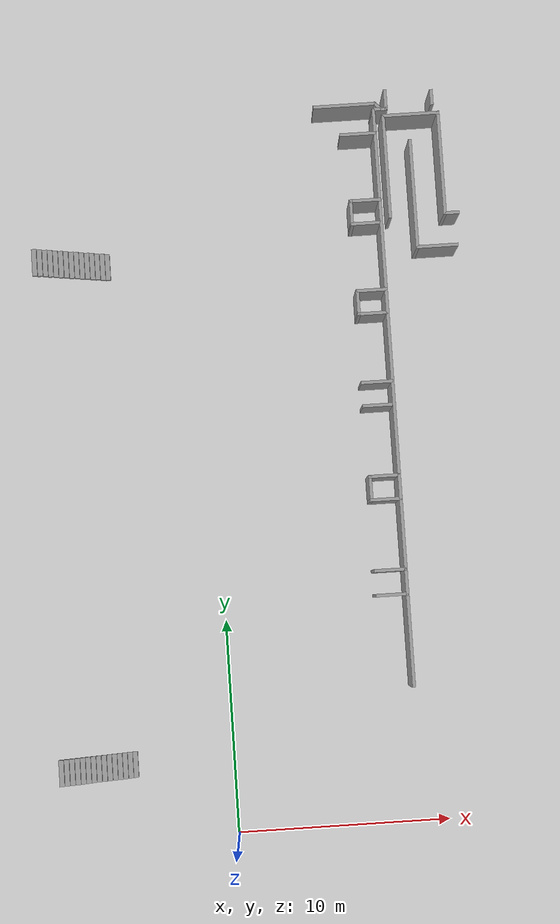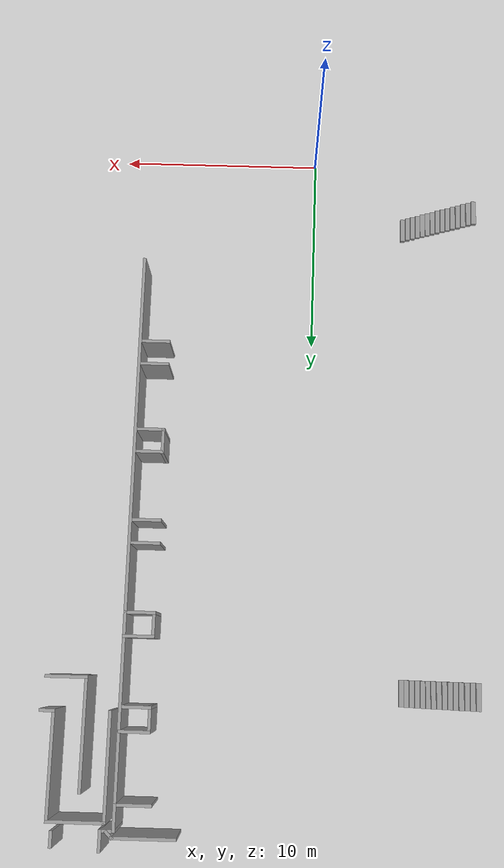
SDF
<sdf version="1.6">
 <world name="default">
  <model name="ground_plane">
   <static>1</static>
   <link name="link">
    <collision name="collision">
     <geometry><plane><normal>0 0 1</normal><size>100 100</size></plane></geometry>
     <surface>
      <contact><collide_bitmask>65535</collide_bitmask></contact>
      <friction><ode><mu>100</mu><mu2>50</mu2></ode></friction>
     </surface>
    </collision>
    <visual name="visual">
     <cast_shadows>0</cast_shadows>
     <geometry><plane><normal>0 0 1</normal><size>100 100</size></plane></geometry>
     <material>
      <script><uri>file://media/materials/scripts/gazebo.material</uri><name>Gazebo/Grey</name></script>
     </material>
    </visual>
   </link>
  </model>
  <model name="Tsudanuma_2-3-with_door">
   <pose>11.7222 12.8329 0 0 -0 0</pose>
   <link name="Stairs_1">
    <visual name="Stairs_1_Visual_0">
     <pose>-16.3838 14.5522 0.083333 0 -0 -1.5708</pose>
     <geometry><box><size>1.27604 0.233333 0.166667</size></box></geometry>
     <material>
      <script><uri>file://media/materials/scripts/gazebo.material</uri><name>Gazebo/Grey</name></script>
      <ambient>1 1 1 1</ambient>
     </material>
     <meta><layer>0</layer></meta>
    </visual>
    <collision name="Stairs_1_Collision_0">
     <geometry><box><size>1.27604 0.233333 0.166667</size></box></geometry>
     <pose>-16.3838 14.5522 0.083333 0 -0 -1.5708</pose>
    </collision>
    <visual name="Stairs_1_Visual_1">
     <pose>-16.6172 14.5522 0.25 0 -0 -1.5708</pose>
     <geometry><box><size>1.27604 0.233333 0.166667</size></box></geometry>
     <material>
      <script><uri>file://media/materials/scripts/gazebo.material</uri><name>Gazebo/Grey</name></script>
      <ambient>1 1 1 1</ambient>
     </material>
     <meta><layer>0</layer></meta>
    </visual>
    <collision name="Stairs_1_Collision_1">
     <geometry><box><size>1.27604 0.233333 0.166667</size></box></geometry>
     <pose>-16.6172 14.5522 0.25 0 -0 -1.5708</pose>
    </collision>
    <visual name="Stairs_1_Visual_2">
     <pose>-16.8505 14.5522 0.416667 0 -0 -1.5708</pose>
     <geometry><box><size>1.27604 0.233333 0.166667</size></box></geometry>
     <material>
      <script><uri>file://media/materials/scripts/gazebo.material</uri><name>Gazebo/Grey</name></script>
      <ambient>1 1 1 1</ambient>
     </material>
     <meta><layer>0</layer></meta>
    </visual>
    <collision name="Stairs_1_Collision_2">
     <geometry><box><size>1.27604 0.233333 0.166667</size></box></geometry>
     <pose>-16.8505 14.5522 0.416667 0 -0 -1.5708</pose>
    </collision>
    <visual name="Stairs_1_Visual_3">
     <pose>-17.0838 14.5522 0.583333 0 -0 -1.5708</pose>
     <geometry><box><size>1.27604 0.233333 0.166667</size></box></geometry>
     <material>
      <script><uri>file://media/materials/scripts/gazebo.material</uri><name>Gazebo/Grey</name></script>
      <ambient>1 1 1 1</ambient>
     </material>
     <meta><layer>0</layer></meta>
    </visual>
    <collision name="Stairs_1_Collision_3">
     <geometry><box><size>1.27604 0.233333 0.166667</size></box></geometry>
     <pose>-17.0838 14.5522 0.583333 0 -0 -1.5708</pose>
    </collision>
    <visual name="Stairs_1_Visual_4">
     <pose>-17.3172 14.5522 0.75 0 -0 -1.5708</pose>
     <geometry><box><size>1.27604 0.233333 0.166667</size></box></geometry>
     <material>
      <script><uri>file://media/materials/scripts/gazebo.material</uri><name>Gazebo/Grey</name></script>
      <ambient>1 1 1 1</ambient>
     </material>
     <meta><layer>0</layer></meta>
    </visual>
    <collision name="Stairs_1_Collision_4">
     <geometry><box><size>1.27604 0.233333 0.166667</size></box></geometry>
     <pose>-17.3172 14.5522 0.75 0 -0 -1.5708</pose>
    </collision>
    <visual name="Stairs_1_Visual_5">
     <pose>-17.5505 14.5522 0.916667 0 -0 -1.5708</pose>
     <geometry><box><size>1.27604 0.233333 0.166667</size></box></geometry>
     <material>
      <script><uri>file://media/materials/scripts/gazebo.material</uri><name>Gazebo/Grey</name></script>
      <ambient>1 1 1 1</ambient>
     </material>
     <meta><layer>0</layer></meta>
    </visual>
    <collision name="Stairs_1_Collision_5">
     <geometry><box><size>1.27604 0.233333 0.166667</size></box></geometry>
     <pose>-17.5505 14.5522 0.916667 0 -0 -1.5708</pose>
    </collision>
    <visual name="Stairs_1_Visual_6">
     <pose>-17.7838 14.5522 1.08333 0 -0 -1.5708</pose>
     <geometry><box><size>1.27604 0.233333 0.166667</size></box></geometry>
     <material>
      <script><uri>file://media/materials/scripts/gazebo.material</uri><name>Gazebo/Grey</name></script>
      <ambient>1 1 1 1</ambient>
     </material>
     <meta><layer>0</layer></meta>
    </visual>
    <collision name="Stairs_1_Collision_6">
     <geometry><box><size>1.27604 0.233333 0.166667</size></box></geometry>
     <pose>-17.7838 14.5522 1.08333 0 -0 -1.5708</pose>
    </collision>
    <visual name="Stairs_1_Visual_7">
     <pose>-18.0172 14.5522 1.25 0 -0 -1.5708</pose>
     <geometry><box><size>1.27604 0.233333 0.166667</size></box></geometry>
     <material>
      <script><uri>file://media/materials/scripts/gazebo.material</uri><name>Gazebo/Grey</name></script>
      <ambient>1 1 1 1</ambient>
     </material>
     <meta><layer>0</layer></meta>
    </visual>
    <collision name="Stairs_1_Collision_7">
     <geometry><box><size>1.27604 0.233333 0.166667</size></box></geometry>
     <pose>-18.0172 14.5522 1.25 0 -0 -1.5708</pose>
    </collision>
    <visual name="Stairs_1_Visual_8">
     <pose>-18.2505 14.5522 1.41667 0 -0 -1.5708</pose>
     <geometry><box><size>1.27604 0.233333 0.166667</size></box></geometry>
     <material>
      <script><uri>file://media/materials/scripts/gazebo.material</uri><name>Gazebo/Grey</name></script>
      <ambient>1 1 1 1</ambient>
     </material>
     <meta><layer>0</layer></meta>
    </visual>
    <collision name="Stairs_1_Collision_8">
     <geometry><box><size>1.27604 0.233333 0.166667</size></box></geometry>
     <pose>-18.2505 14.5522 1.41667 0 -0 -1.5708</pose>
    </collision>
    <visual name="Stairs_1_Visual_9">
     <pose>-18.4838 14.5522 1.58333 0 -0 -1.5708</pose>
     <geometry><box><size>1.27604 0.233333 0.166667</size></box></geometry>
     <material>
      <script><uri>file://media/materials/scripts/gazebo.material</uri><name>Gazebo/Grey</name></script>
      <ambient>1 1 1 1</ambient>
     </material>
     <meta><layer>0</layer></meta>
    </visual>
    <collision name="Stairs_1_Collision_9">
     <geometry><box><size>1.27604 0.233333 0.166667</size></box></geometry>
     <pose>-18.4838 14.5522 1.58333 0 -0 -1.5708</pose>
    </collision>
    <visual name="Stairs_1_Visual_10">
     <pose>-18.7172 14.5522 1.75 0 -0 -1.5708</pose>
     <geometry><box><size>1.27604 0.233333 0.166667</size></box></geometry>
     <material>
      <script><uri>file://media/materials/scripts/gazebo.material</uri><name>Gazebo/Grey</name></script>
      <ambient>1 1 1 1</ambient>
     </material>
     <meta><layer>0</layer></meta>
    </visual>
    <collision name="Stairs_1_Collision_10">
     <geometry><box><size>1.27604 0.233333 0.166667</size></box></geometry>
     <pose>-18.7172 14.5522 1.75 0 -0 -1.5708</pose>
    </collision>
    <visual name="Stairs_1_Visual_11">
     <pose>-18.9505 14.5522 1.91667 0 -0 -1.5708</pose>
     <geometry><box><size>1.27604 0.233333 0.166667</size></box></geometry>
     <material>
      <script><uri>file://media/materials/scripts/gazebo.material</uri><name>Gazebo/Grey</name></script>
      <ambient>1 1 1 1</ambient>
     </material>
     <meta><layer>0</layer></meta>
    </visual>
    <collision name="Stairs_1_Collision_11">
     <geometry><box><size>1.27604 0.233333 0.166667</size></box></geometry>
     <pose>-18.9505 14.5522 1.91667 0 -0 -1.5708</pose>
    </collision>
    <visual name="Stairs_1_Visual_12">
     <pose>-19.1838 14.5522 2.08333 0 -0 -1.5708</pose>
     <geometry><box><size>1.27604 0.233333 0.166667</size></box></geometry>
     <material>
      <script><uri>file://media/materials/scripts/gazebo.material</uri><name>Gazebo/Grey</name></script>
      <ambient>1 1 1 1</ambient>
     </material>
     <meta><layer>0</layer></meta>
    </visual>
    <collision name="Stairs_1_Collision_12">
     <geometry><box><size>1.27604 0.233333 0.166667</size></box></geometry>
     <pose>-19.1838 14.5522 2.08333 0 -0 -1.5708</pose>
    </collision>
    <visual name="Stairs_1_Visual_13">
     <pose>-19.4172 14.5522 2.25 0 -0 -1.5708</pose>
     <geometry><box><size>1.27604 0.233333 0.166667</size></box></geometry>
     <material>
      <script><uri>file://media/materials/scripts/gazebo.material</uri><name>Gazebo/Grey</name></script>
      <ambient>1 1 1 1</ambient>
     </material>
     <meta><layer>0</layer></meta>
    </visual>
    <collision name="Stairs_1_Collision_13">
     <geometry><box><size>1.27604 0.233333 0.166667</size></box></geometry>
     <pose>-19.4172 14.5522 2.25 0 -0 -1.5708</pose>
    </collision>
    <visual name="Stairs_1_Visual_14">
     <pose>-19.6505 14.5522 2.41667 0 -0 -1.5708</pose>
     <geometry><box><size>1.27604 0.233333 0.166667</size></box></geometry>
     <material>
      <script><uri>file://media/materials/scripts/gazebo.material</uri><name>Gazebo/Grey</name></script>
      <ambient>1 1 1 1</ambient>
     </material>
     <meta><layer>0</layer></meta>
    </visual>
    <collision name="Stairs_1_Collision_14">
     <geometry><box><size>1.27604 0.233333 0.166667</size></box></geometry>
     <pose>-19.6505 14.5522 2.41667 0 -0 -1.5708</pose>
    </collision>
   </link>
   <link name="Stairs_2">
    <visual name="Stairs_2_Visual_0">
     <pose>-16.4233 -9.33498 0.083333 0 -0 -1.5708</pose>
     <geometry><box><size>1.21689 0.233333 0.166667</size></box></geometry>
     <material>
      <script><uri>file://media/materials/scripts/gazebo.material</uri><name>Gazebo/Grey</name></script>
      <ambient>1 1 1 1</ambient>
     </material>
     <meta><layer>0</layer></meta>
    </visual>
    <collision name="Stairs_2_Collision_0">
     <geometry><box><size>1.21689 0.233333 0.166667</size></box></geometry>
     <pose>-16.4233 -9.33498 0.083333 0 -0 -1.5708</pose>
    </collision>
    <visual name="Stairs_2_Visual_1">
     <pose>-16.6566 -9.33498 0.25 0 -0 -1.5708</pose>
     <geometry><box><size>1.21689 0.233333 0.166667</size></box></geometry>
     <material>
      <script><uri>file://media/materials/scripts/gazebo.material</uri><name>Gazebo/Grey</name></script>
      <ambient>1 1 1 1</ambient>
     </material>
     <meta><layer>0</layer></meta>
    </visual>
    <collision name="Stairs_2_Collision_1">
     <geometry><box><size>1.21689 0.233333 0.166667</size></box></geometry>
     <pose>-16.6566 -9.33498 0.25 0 -0 -1.5708</pose>
    </collision>
    <visual name="Stairs_2_Visual_2">
     <pose>-16.8899 -9.33498 0.416667 0 -0 -1.5708</pose>
     <geometry><box><size>1.21689 0.233333 0.166667</size></box></geometry>
     <material>
      <script><uri>file://media/materials/scripts/gazebo.material</uri><name>Gazebo/Grey</name></script>
      <ambient>1 1 1 1</ambient>
     </material>
     <meta><layer>0</layer></meta>
    </visual>
    <collision name="Stairs_2_Collision_2">
     <geometry><box><size>1.21689 0.233333 0.166667</size></box></geometry>
     <pose>-16.8899 -9.33498 0.416667 0 -0 -1.5708</pose>
    </collision>
    <visual name="Stairs_2_Visual_3">
     <pose>-17.1233 -9.33498 0.583333 0 -0 -1.5708</pose>
     <geometry><box><size>1.21689 0.233333 0.166667</size></box></geometry>
     <material>
      <script><uri>file://media/materials/scripts/gazebo.material</uri><name>Gazebo/Grey</name></script>
      <ambient>1 1 1 1</ambient>
     </material>
     <meta><layer>0</layer></meta>
    </visual>
    <collision name="Stairs_2_Collision_3">
     <geometry><box><size>1.21689 0.233333 0.166667</size></box></geometry>
     <pose>-17.1233 -9.33498 0.583333 0 -0 -1.5708</pose>
    </collision>
    <visual name="Stairs_2_Visual_4">
     <pose>-17.3566 -9.33498 0.75 0 -0 -1.5708</pose>
     <geometry><box><size>1.21689 0.233333 0.166667</size></box></geometry>
     <material>
      <script><uri>file://media/materials/scripts/gazebo.material</uri><name>Gazebo/Grey</name></script>
      <ambient>1 1 1 1</ambient>
     </material>
     <meta><layer>0</layer></meta>
    </visual>
    <collision name="Stairs_2_Collision_4">
     <geometry><box><size>1.21689 0.233333 0.166667</size></box></geometry>
     <pose>-17.3566 -9.33498 0.75 0 -0 -1.5708</pose>
    </collision>
    <visual name="Stairs_2_Visual_5">
     <pose>-17.5899 -9.33498 0.916667 0 -0 -1.5708</pose>
     <geometry><box><size>1.21689 0.233333 0.166667</size></box></geometry>
     <material>
      <script><uri>file://media/materials/scripts/gazebo.material</uri><name>Gazebo/Grey</name></script>
      <ambient>1 1 1 1</ambient>
     </material>
     <meta><layer>0</layer></meta>
    </visual>
    <collision name="Stairs_2_Collision_5">
     <geometry><box><size>1.21689 0.233333 0.166667</size></box></geometry>
     <pose>-17.5899 -9.33498 0.916667 0 -0 -1.5708</pose>
    </collision>
    <visual name="Stairs_2_Visual_6">
     <pose>-17.8233 -9.33498 1.08333 0 -0 -1.5708</pose>
     <geometry><box><size>1.21689 0.233333 0.166667</size></box></geometry>
     <material>
      <script><uri>file://media/materials/scripts/gazebo.material</uri><name>Gazebo/Grey</name></script>
      <ambient>1 1 1 1</ambient>
     </material>
     <meta><layer>0</layer></meta>
    </visual>
    <collision name="Stairs_2_Collision_6">
     <geometry><box><size>1.21689 0.233333 0.166667</size></box></geometry>
     <pose>-17.8233 -9.33498 1.08333 0 -0 -1.5708</pose>
    </collision>
    <visual name="Stairs_2_Visual_7">
     <pose>-18.0566 -9.33498 1.25 0 -0 -1.5708</pose>
     <geometry><box><size>1.21689 0.233333 0.166667</size></box></geometry>
     <material>
      <script><uri>file://media/materials/scripts/gazebo.material</uri><name>Gazebo/Grey</name></script>
      <ambient>1 1 1 1</ambient>
     </material>
     <meta><layer>0</layer></meta>
    </visual>
    <collision name="Stairs_2_Collision_7">
     <geometry><box><size>1.21689 0.233333 0.166667</size></box></geometry>
     <pose>-18.0566 -9.33498 1.25 0 -0 -1.5708</pose>
    </collision>
    <visual name="Stairs_2_Visual_8">
     <pose>-18.2899 -9.33498 1.41667 0 -0 -1.5708</pose>
     <geometry><box><size>1.21689 0.233333 0.166667</size></box></geometry>
     <material>
      <script><uri>file://media/materials/scripts/gazebo.material</uri><name>Gazebo/Grey</name></script>
      <ambient>1 1 1 1</ambient>
     </material>
     <meta><layer>0</layer></meta>
    </visual>
    <collision name="Stairs_2_Collision_8">
     <geometry><box><size>1.21689 0.233333 0.166667</size></box></geometry>
     <pose>-18.2899 -9.33498 1.41667 0 -0 -1.5708</pose>
    </collision>
    <visual name="Stairs_2_Visual_9">
     <pose>-18.5233 -9.33498 1.58333 0 -0 -1.5708</pose>
     <geometry><box><size>1.21689 0.233333 0.166667</size></box></geometry>
     <material>
      <script><uri>file://media/materials/scripts/gazebo.material</uri><name>Gazebo/Grey</name></script>
      <ambient>1 1 1 1</ambient>
     </material>
     <meta><layer>0</layer></meta>
    </visual>
    <collision name="Stairs_2_Collision_9">
     <geometry><box><size>1.21689 0.233333 0.166667</size></box></geometry>
     <pose>-18.5233 -9.33498 1.58333 0 -0 -1.5708</pose>
    </collision>
    <visual name="Stairs_2_Visual_10">
     <pose>-18.7566 -9.33498 1.75 0 -0 -1.5708</pose>
     <geometry><box><size>1.21689 0.233333 0.166667</size></box></geometry>
     <material>
      <script><uri>file://media/materials/scripts/gazebo.material</uri><name>Gazebo/Grey</name></script>
      <ambient>1 1 1 1</ambient>
     </material>
     <meta><layer>0</layer></meta>
    </visual>
    <collision name="Stairs_2_Collision_10">
     <geometry><box><size>1.21689 0.233333 0.166667</size></box></geometry>
     <pose>-18.7566 -9.33498 1.75 0 -0 -1.5708</pose>
    </collision>
    <visual name="Stairs_2_Visual_11">
     <pose>-18.9899 -9.33498 1.91667 0 -0 -1.5708</pose>
     <geometry><box><size>1.21689 0.233333 0.166667</size></box></geometry>
     <material>
      <script><uri>file://media/materials/scripts/gazebo.material</uri><name>Gazebo/Grey</name></script>
      <ambient>1 1 1 1</ambient>
     </material>
     <meta><layer>0</layer></meta>
    </visual>
    <collision name="Stairs_2_Collision_11">
     <geometry><box><size>1.21689 0.233333 0.166667</size></box></geometry>
     <pose>-18.9899 -9.33498 1.91667 0 -0 -1.5708</pose>
    </collision>
    <visual name="Stairs_2_Visual_12">
     <pose>-19.2233 -9.33498 2.08333 0 -0 -1.5708</pose>
     <geometry><box><size>1.21689 0.233333 0.166667</size></box></geometry>
     <material>
      <script><uri>file://media/materials/scripts/gazebo.material</uri><name>Gazebo/Grey</name></script>
      <ambient>1 1 1 1</ambient>
     </material>
     <meta><layer>0</layer></meta>
    </visual>
    <collision name="Stairs_2_Collision_12">
     <geometry><box><size>1.21689 0.233333 0.166667</size></box></geometry>
     <pose>-19.2233 -9.33498 2.08333 0 -0 -1.5708</pose>
    </collision>
    <visual name="Stairs_2_Visual_13">
     <pose>-19.4566 -9.33498 2.25 0 -0 -1.5708</pose>
     <geometry><box><size>1.21689 0.233333 0.166667</size></box></geometry>
     <material>
      <script><uri>file://media/materials/scripts/gazebo.material</uri><name>Gazebo/Grey</name></script>
      <ambient>1 1 1 1</ambient>
     </material>
     <meta><layer>0</layer></meta>
    </visual>
    <collision name="Stairs_2_Collision_13">
     <geometry><box><size>1.21689 0.233333 0.166667</size></box></geometry>
     <pose>-19.4566 -9.33498 2.25 0 -0 -1.5708</pose>
    </collision>
    <visual name="Stairs_2_Visual_14">
     <pose>-19.6899 -9.33498 2.41667 0 -0 -1.5708</pose>
     <geometry><box><size>1.21689 0.233333 0.166667</size></box></geometry>
     <material>
      <script><uri>file://media/materials/scripts/gazebo.material</uri><name>Gazebo/Grey</name></script>
      <ambient>1 1 1 1</ambient>
     </material>
     <meta><layer>0</layer></meta>
    </visual>
    <collision name="Stairs_2_Collision_14">
     <geometry><box><size>1.21689 0.233333 0.166667</size></box></geometry>
     <pose>-19.6899 -9.33498 2.41667 0 -0 -1.5708</pose>
    </collision>
   </link>
   <link name="Wall_328">
    <collision name="Wall_328_Collision">
     <geometry><box><size>0.75 0.15 2.5</size></box></geometry>
     <pose>0 0 1.25 0 -0 0</pose>
    </collision>
    <visual name="Wall_328_Visual">
     <pose>0 0 1.25 0 -0 0</pose>
     <geometry><box><size>0.75 0.15 2.5</size></box></geometry>
     <material>
      <script><uri>file://media/materials/scripts/gazebo.material</uri><name>Gazebo/Grey</name></script>
      <ambient>1 1 1 1</ambient>
     </material>
     <meta><layer>0</layer></meta>
    </visual>
    <pose>-0.394673 21.2823 0 0 -0 -1.5708</pose>
   </link>
   <link name="Wall_331">
    <collision name="Wall_331_Collision">
     <geometry><box><size>5.25 0.15 2.5</size></box></geometry>
     <pose>0 0 1.25 0 -0 0</pose>
    </collision>
    <visual name="Wall_331_Visual">
     <pose>0 0 1.25 0 -0 0</pose>
     <geometry><box><size>5.25 0.15 2.5</size></box></geometry>
     <material>
      <script><uri>file://media/materials/scripts/gazebo.material</uri><name>Gazebo/Grey</name></script>
      <ambient>1 1 1 1</ambient>
     </material>
     <meta><layer>0</layer></meta>
    </visual>
    <pose>-1.56113 16.6869 0 0 -0 -1.5708</pose>
   </link>
   <link name="Wall_332">
    <collision name="Wall_332_Collision">
     <geometry><box><size>2 0.15 2.5</size></box></geometry>
     <pose>0 0 1.25 0 -0 0</pose>
    </collision>
    <visual name="Wall_332_Visual">
     <pose>0 0 1.25 0 -0 0</pose>
     <geometry><box><size>2 0.15 2.5</size></box></geometry>
     <material>
      <script><uri>file://media/materials/scripts/gazebo.material</uri><name>Gazebo/Grey</name></script>
      <ambient>1 1 1 1</ambient>
     </material>
     <meta><layer>0</layer></meta>
    </visual>
    <pose>-0.636127 14.1369 0 0 -0 0</pose>
   </link>
   <link name="Wall_334">
    <collision name="Wall_334_Collision">
     <geometry><box><size>5 0.15 2.5</size></box></geometry>
     <pose>0 0 1.25 0 -0 0</pose>
    </collision>
    <visual name="Wall_334_Visual">
     <pose>0 0 1.25 0 -0 0</pose>
     <geometry><box><size>5 0.15 2.5</size></box></geometry>
     <material>
      <script><uri>file://media/materials/scripts/gazebo.material</uri><name>Gazebo/Grey</name></script>
      <ambient>1 1 1 1</ambient>
     </material>
     <meta><layer>0</layer></meta>
    </visual>
    <pose>-2.74883 18.0988 0 0 -0 1.5708</pose>
   </link>
   <link name="Wall_335">
    <collision name="Wall_335_Collision">
     <geometry><box><size>2.75 0.15 2.5</size></box></geometry>
     <pose>0 0 1.25 0 -0 0</pose>
    </collision>
    <visual name="Wall_335_Visual">
     <pose>0 0 1.25 0 -0 0</pose>
     <geometry><box><size>2.75 0.15 2.5</size></box></geometry>
     <material>
      <script><uri>file://media/materials/scripts/gazebo.material</uri><name>Gazebo/Grey</name></script>
      <ambient>1 1 1 1</ambient>
     </material>
     <meta><layer>0</layer></meta>
    </visual>
    <pose>-1.44883 20.5238 0 0 -0 0</pose>
   </link>
   <link name="Wall_336">
    <collision name="Wall_336_Collision">
     <geometry><box><size>5 0.15 2.5</size></box></geometry>
     <pose>0 0 1.25 0 -0 0</pose>
    </collision>
    <visual name="Wall_336_Visual">
     <pose>0 0 1.25 0 -0 0</pose>
     <geometry><box><size>5 0.15 2.5</size></box></geometry>
     <material>
      <script><uri>file://media/materials/scripts/gazebo.material</uri><name>Gazebo/Grey</name></script>
      <ambient>1 1 1 1</ambient>
     </material>
     <meta><layer>0</layer></meta>
    </visual>
    <pose>-0.148833 18.0988 0 0 -0 -1.5708</pose>
   </link>
   <link name="Wall_337">
    <collision name="Wall_337_Collision">
     <geometry><box><size>0.75 0.15 2.5</size></box></geometry>
     <pose>0 0 1.25 0 -0 0</pose>
    </collision>
    <visual name="Wall_337_Visual">
     <pose>0 0 1.25 0 -0 0</pose>
     <geometry><box><size>0.75 0.15 2.5</size></box></geometry>
     <material>
      <script><uri>file://media/materials/scripts/gazebo.material</uri><name>Gazebo/Grey</name></script>
      <ambient>1 1 1 1</ambient>
     </material>
     <meta><layer>0</layer></meta>
    </visual>
    <pose>0.151167 15.6738 0 0 -0 0</pose>
   </link>
   <link name="Wall_430">
    <collision name="Wall_430_Collision">
     <geometry><box><size>1.5 0.15 2.5</size></box></geometry>
     <pose>0 0 1.25 0 -0 0</pose>
    </collision>
    <visual name="Wall_430_Visual">
     <pose>0 0 1.25 0 -0 0</pose>
     <geometry><box><size>1.5 0.15 2.5</size></box></geometry>
     <material>
      <script><uri>file://media/materials/scripts/gazebo.material</uri><name>Gazebo/Grey</name></script>
      <ambient>1 1 1 1</ambient>
     </material>
     <meta><layer>0</layer></meta>
    </visual>
    <pose>-3.91033 -2.11014 0 0 -0 3.14159</pose>
   </link>
   <link name="Wall_433">
    <collision name="Wall_433_Collision">
     <geometry><box><size>1.5 0.15 2.5</size></box></geometry>
     <pose>0 0 1.25 0 -0 0</pose>
    </collision>
    <visual name="Wall_433_Visual">
     <pose>0 0 1.25 0 -0 0</pose>
     <geometry><box><size>1.5 0.15 2.5</size></box></geometry>
     <material>
      <script><uri>file://media/materials/scripts/gazebo.material</uri><name>Gazebo/Grey</name></script>
      <ambient>1 1 1 1</ambient>
     </material>
     <meta><layer>0</layer></meta>
    </visual>
    <pose>-3.91033 -0.960138 0 0 -0 0</pose>
   </link>
   <link name="Wall_435">
    <collision name="Wall_435_Collision">
     <geometry><box><size>1.5 0.15 2.5</size></box></geometry>
     <pose>0 0 1.25 0 -0 0</pose>
    </collision>
    <visual name="Wall_435_Visual">
     <pose>0 0 1.25 0 -0 0</pose>
     <geometry><box><size>1.5 0.15 2.5</size></box></geometry>
     <material>
      <script><uri>file://media/materials/scripts/gazebo.material</uri><name>Gazebo/Grey</name></script>
      <ambient>1 1 1 1</ambient>
     </material>
     <meta><layer>0</layer></meta>
    </visual>
    <pose>-3.87153 2.3408 0 0 -0 3.14159</pose>
   </link>
   <link name="Wall_436">
    <collision name="Wall_436_Collision">
     <geometry><box><size>1.25 0.15 2.5</size></box></geometry>
     <pose>0 0 1.25 0 -0 0</pose>
    </collision>
    <visual name="Wall_436_Visual">
     <pose>0 0 1.25 0 -0 0</pose>
     <geometry><box><size>1.25 0.15 2.5</size></box></geometry>
     <material>
      <script><uri>file://media/materials/scripts/gazebo.material</uri><name>Gazebo/Grey</name></script>
      <ambient>1 1 1 1</ambient>
     </material>
     <meta><layer>0</layer></meta>
    </visual>
    <pose>-4.54653 2.8908 0 0 -0 1.5708</pose>
   </link>
   <link name="Wall_437">
    <collision name="Wall_437_Collision">
     <geometry><box><size>1.5 0.15 2.5</size></box></geometry>
     <pose>0 0 1.25 0 -0 0</pose>
    </collision>
    <visual name="Wall_437_Visual">
     <pose>0 0 1.25 0 -0 0</pose>
     <geometry><box><size>1.5 0.15 2.5</size></box></geometry>
     <material>
      <script><uri>file://media/materials/scripts/gazebo.material</uri><name>Gazebo/Grey</name></script>
      <ambient>1 1 1 1</ambient>
     </material>
     <meta><layer>0</layer></meta>
    </visual>
    <pose>-3.87153 3.4408 0 0 -0 0</pose>
   </link>
   <link name="Wall_439">
    <collision name="Wall_439_Collision">
     <geometry><box><size>1.5 0.15 2.5</size></box></geometry>
     <pose>0 0 1.25 0 -0 0</pose>
    </collision>
    <visual name="Wall_439_Visual">
     <pose>0 0 1.25 0 -0 0</pose>
     <geometry><box><size>1.5 0.15 2.5</size></box></geometry>
     <material>
      <script><uri>file://media/materials/scripts/gazebo.material</uri><name>Gazebo/Grey</name></script>
      <ambient>1 1 1 1</ambient>
     </material>
     <meta><layer>0</layer></meta>
    </visual>
    <pose>-3.91779 6.76773 0 0 -0 3.14159</pose>
   </link>
   <link name="Wall_441">
    <collision name="Wall_441_Collision">
     <geometry><box><size>1.5 0.15 2.5</size></box></geometry>
     <pose>0 0 1.25 0 -0 0</pose>
    </collision>
    <visual name="Wall_441_Visual">
     <pose>0 0 1.25 0 -0 0</pose>
     <geometry><box><size>1.5 0.15 2.5</size></box></geometry>
     <material>
      <script><uri>file://media/materials/scripts/gazebo.material</uri><name>Gazebo/Grey</name></script>
      <ambient>1 1 1 1</ambient>
     </material>
     <meta><layer>0</layer></meta>
    </visual>
    <pose>-3.91779 7.86773 0 0 -0 0</pose>
   </link>
   <link name="Wall_443">
    <collision name="Wall_443_Collision">
     <geometry><box><size>1.5 0.15 2.5</size></box></geometry>
     <pose>0 0 1.25 0 -0 0</pose>
    </collision>
    <visual name="Wall_443_Visual">
     <pose>0 0 1.25 0 -0 0</pose>
     <geometry><box><size>1.5 0.15 2.5</size></box></geometry>
     <material>
      <script><uri>file://media/materials/scripts/gazebo.material</uri><name>Gazebo/Grey</name></script>
      <ambient>1 1 1 1</ambient>
     </material>
     <meta><layer>0</layer></meta>
    </visual>
    <pose>-3.86236 11.1244 0 0 -0 3.14159</pose>
   </link>
   <link name="Wall_444">
    <collision name="Wall_444_Collision">
     <geometry><box><size>1.25 0.15 2.5</size></box></geometry>
     <pose>0 0 1.25 0 -0 0</pose>
    </collision>
    <visual name="Wall_444_Visual">
     <pose>0 0 1.25 0 -0 0</pose>
     <geometry><box><size>1.25 0.15 2.5</size></box></geometry>
     <material>
      <script><uri>file://media/materials/scripts/gazebo.material</uri><name>Gazebo/Grey</name></script>
      <ambient>1 1 1 1</ambient>
     </material>
     <meta><layer>0</layer></meta>
    </visual>
    <pose>-4.53736 11.6744 0 0 -0 1.5708</pose>
   </link>
   <link name="Wall_445">
    <collision name="Wall_445_Collision">
     <geometry><box><size>1.5 0.15 2.5</size></box></geometry>
     <pose>0 0 1.25 0 -0 0</pose>
    </collision>
    <visual name="Wall_445_Visual">
     <pose>0 0 1.25 0 -0 0</pose>
     <geometry><box><size>1.5 0.15 2.5</size></box></geometry>
     <material>
      <script><uri>file://media/materials/scripts/gazebo.material</uri><name>Gazebo/Grey</name></script>
      <ambient>1 1 1 1</ambient>
     </material>
     <meta><layer>0</layer></meta>
    </visual>
    <pose>-3.86236 12.2244 0 0 -0 0</pose>
   </link>
   <link name="Wall_447">
    <collision name="Wall_447_Collision">
     <geometry><box><size>1.5 0.15 2.5</size></box></geometry>
     <pose>0 0 1.25 0 -0 0</pose>
    </collision>
    <visual name="Wall_447_Visual">
     <pose>0 0 1.25 0 -0 0</pose>
     <geometry><box><size>1.5 0.15 2.5</size></box></geometry>
     <material>
      <script><uri>file://media/materials/scripts/gazebo.material</uri><name>Gazebo/Grey</name></script>
      <ambient>1 1 1 1</ambient>
     </material>
     <meta><layer>0</layer></meta>
    </visual>
    <pose>-3.8886 15.4256 0 0 -0 3.14159</pose>
   </link>
   <link name="Wall_448">
    <collision name="Wall_448_Collision">
     <geometry><box><size>1.25 0.15 2.5</size></box></geometry>
     <pose>0 0 1.25 0 -0 0</pose>
    </collision>
    <visual name="Wall_448_Visual">
     <pose>0 0 1.25 0 -0 0</pose>
     <geometry><box><size>1.25 0.15 2.5</size></box></geometry>
     <material>
      <script><uri>file://media/materials/scripts/gazebo.material</uri><name>Gazebo/Grey</name></script>
      <ambient>1 1 1 1</ambient>
     </material>
     <meta><layer>0</layer></meta>
    </visual>
    <pose>-4.5636 15.9756 0 0 -0 1.5708</pose>
   </link>
   <link name="Wall_449">
    <collision name="Wall_449_Collision">
     <geometry><box><size>1.5 0.15 2.5</size></box></geometry>
     <pose>0 0 1.25 0 -0 0</pose>
    </collision>
    <visual name="Wall_449_Visual">
     <pose>0 0 1.25 0 -0 0</pose>
     <geometry><box><size>1.5 0.15 2.5</size></box></geometry>
     <material>
      <script><uri>file://media/materials/scripts/gazebo.material</uri><name>Gazebo/Grey</name></script>
      <ambient>1 1 1 1</ambient>
     </material>
     <meta><layer>0</layer></meta>
    </visual>
    <pose>-3.8886 16.5256 0 0 -0 0</pose>
   </link>
   <link name="Wall_81">
    <collision name="Wall_81_Collision">
     <geometry><box><size>1.75 0.15 2.5</size></box></geometry>
     <pose>0 0 1.25 0 -0 0</pose>
    </collision>
    <visual name="Wall_81_Visual">
     <pose>0 0 1.25 0 -0 0</pose>
     <geometry><box><size>1.75 0.15 2.5</size></box></geometry>
     <material>
      <script><uri>file://media/materials/scripts/gazebo.material</uri><name>Gazebo/Grey</name></script>
      <ambient>1 1 1 1</ambient>
     </material>
     <meta><layer>0</layer></meta>
    </visual>
    <pose>-3.9875 19.7286 0 0 -0 0</pose>
   </link>
   <link name="Wall_82">
    <collision name="Wall_82_Collision">
     <geometry><box><size>26.25 0.15 2.5</size></box></geometry>
     <pose>0 0 1.25 0 -0 0</pose>
    </collision>
    <visual name="Wall_82_Visual">
     <pose>0 0 1.25 0 -0 0</pose>
     <geometry><box><size>26.25 0.15 2.5</size></box></geometry>
     <material>
      <script><uri>file://media/materials/scripts/gazebo.material</uri><name>Gazebo/Grey</name></script>
      <ambient>1 1 1 1</ambient>
     </material>
     <meta><layer>0</layer></meta>
    </visual>
    <pose>-3.1875 6.67861 0 0 -0 -1.5708</pose>
   </link>
   <link name="Wall_84">
    <collision name="Wall_84_Collision">
     <geometry><box><size>1.25 0.15 2.5</size></box></geometry>
     <pose>0 0 1.25 0 -0 0</pose>
    </collision>
    <visual name="Wall_84_Visual">
     <pose>0 0 1.25 0 -0 0</pose>
     <geometry><box><size>1.25 0.15 2.5</size></box></geometry>
     <material>
      <script><uri>file://media/materials/scripts/gazebo.material</uri><name>Gazebo/Grey</name></script>
      <ambient>1 1 1 1</ambient>
     </material>
     <meta><layer>0</layer></meta>
    </visual>
    <pose>-3.1875 20.2786 0 0 -0 1.5708</pose>
   </link>
   <link name="Wall_88">
    <collision name="Wall_88_Collision">
     <geometry><box><size>3 0.15 2.5</size></box></geometry>
     <pose>0 0 1.25 0 -0 0</pose>
    </collision>
    <visual name="Wall_88_Visual">
     <pose>0 0 1.25 0 -0 0</pose>
     <geometry><box><size>3 0.15 2.5</size></box></geometry>
     <material>
      <script><uri>file://media/materials/scripts/gazebo.material</uri><name>Gazebo/Grey</name></script>
      <ambient>1 1 1 1</ambient>
     </material>
     <meta><layer>0</layer></meta>
    </visual>
    <pose>-4.53969 21.1441 0 0 -0 0</pose>
   </link>
   <link name="Wall_89">
    <collision name="Wall_89_Collision">
     <geometry><box><size>0.5 0.15 2.5</size></box></geometry>
     <pose>0 0 1.25 0 -0 0</pose>
    </collision>
    <visual name="Wall_89_Visual">
     <pose>0 0 1.25 0 -0 0</pose>
     <geometry><box><size>0.5 0.15 2.5</size></box></geometry>
     <material>
      <script><uri>file://media/materials/scripts/gazebo.material</uri><name>Gazebo/Grey</name></script>
      <ambient>1 1 1 1</ambient>
     </material>
     <meta><layer>0</layer></meta>
    </visual>
    <pose>-2.99095 21.0204 0 0 -0 -0.785398</pose>
   </link>
   <link name="Wall_92">
    <collision name="Wall_92_Collision">
     <geometry><box><size>1 0.15 2.5</size></box></geometry>
     <pose>0 0 1.25 0 -0 0</pose>
    </collision>
    <visual name="Wall_92_Visual">
     <pose>0 0 1.25 0 -0 0</pose>
     <geometry><box><size>1 0.15 2.5</size></box></geometry>
     <material>
      <script><uri>file://media/materials/scripts/gazebo.material</uri><name>Gazebo/Grey</name></script>
      <ambient>1 1 1 1</ambient>
     </material>
     <meta><layer>0</layer></meta>
    </visual>
    <pose>-2.59032 21.2865 0 0 -0 -1.5708</pose>
   </link>
   <link name="Wall_93">
    <collision name="Wall_93_Collision">
     <geometry><box><size>0.75 0.15 2.5</size></box></geometry>
     <pose>0 0 1.25 0 -0 0</pose>
    </collision>
    <visual name="Wall_93_Visual">
     <pose>0 0 1.25 0 -0 0</pose>
     <geometry><box><size>0.75 0.15 2.5</size></box></geometry>
     <material>
      <script><uri>file://media/materials/scripts/gazebo.material</uri><name>Gazebo/Grey</name></script>
      <ambient>1 1 1 1</ambient>
     </material>
     <meta><layer>0</layer></meta>
    </visual>
    <pose>-2.89032 20.8615 0 0 -0 3.14159</pose>
   </link>
   <static>1</static>
  </model>
 </world>
</sdf>
